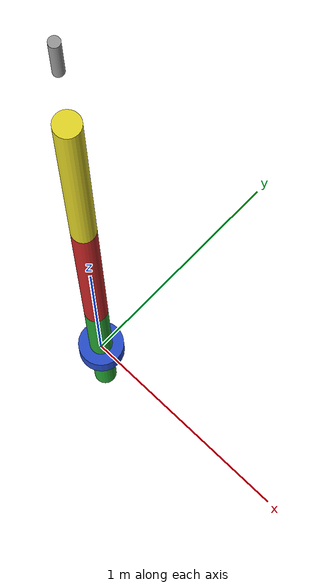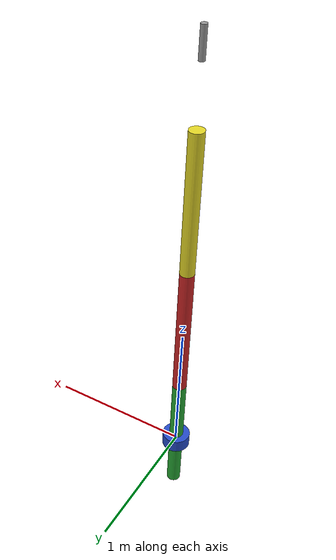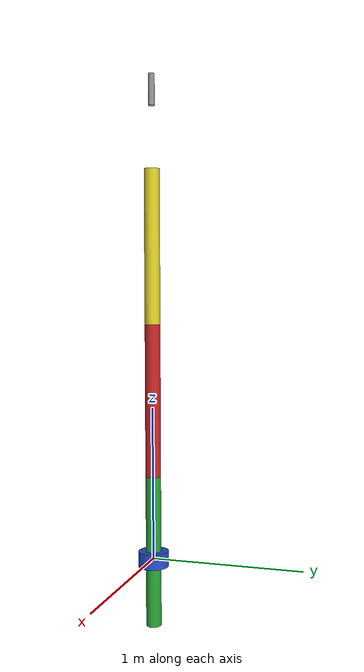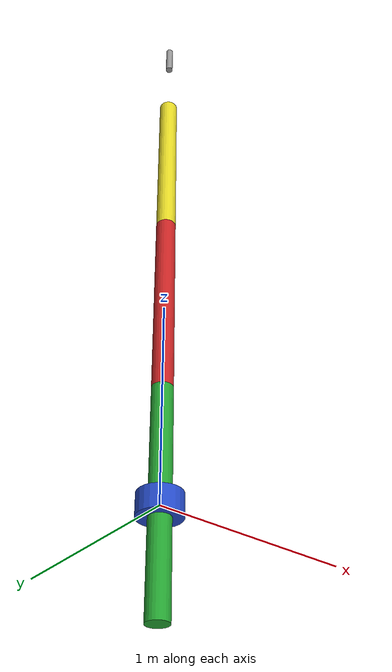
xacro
<?xml version="1.0"?>
<robot name="my_robot_arm" xmlns:xacro="http://www.ros.org/wiki/xacro">

    <!-- Define some constants -->
    <xacro:property name="arm_length" value="1.0" />
    <xacro:property name="arm_radius" value="0.05" />
    <xacro:property name="gripper_length" value="0.2" />
    <xacro:property name="gripper_radius" value="0.02" />

    <!-- Base link -->
    <link name="base_link">
        <visual>
            <geometry>
                <cylinder length="0.1" radius="0.1" />
            </geometry>
            <material name="blue" />
        </visual>
    </link>

    <!-- Joint 1 -->
    <joint name="joint1" type="revolute">
        <parent link="base_link" />
        <child link="link1" />
        <origin xyz="0 0 0.05" rpy="0 0 0" />
        <axis xyz="0 0 1" />
        <limit lower="-1.57" upper="1.57" effort="10" velocity="1" />
    </joint>

    <!-- Link 1 -->
    <link name="link1">
        <visual>
            <geometry>
                <cylinder length="${arm_length}" radius="${arm_radius}" />
            </geometry>
            <material name="green" />
        </visual>
    </link>

    <!-- Joint 2 -->
    <joint name="joint2" type="revolute">
        <parent link="link1" />
        <child link="link2" />
        <origin xyz="0 0 ${arm_length}" rpy="0 0 0" />
        <axis xyz="0 1 0" />
        <limit lower="-1.57" upper="1.57" effort="10" velocity="1" />
    </joint>

    <!-- Link 2 -->
    <link name="link2">
        <visual>
            <geometry>
                <cylinder length="${arm_length}" radius="${arm_radius}" />
            </geometry>
            <material name="red" />
        </visual>
    </link>

    <!-- Joint 3 -->
    <joint name="joint3" type="revolute">
        <parent link="link2" />
        <child link="link3" />
        <origin xyz="0 0 ${arm_length}" rpy="0 0 0" />
        <axis xyz="0 1 0" />
        <limit lower="-1.57" upper="1.57" effort="10" velocity="1" />
    </joint>

    <!-- Link 3 -->
    <link name="link3">
        <visual>
            <geometry>
                <cylinder length="${arm_length}" radius="${arm_radius}" />
            </geometry>
            <material name="yellow" />
        </visual>
    </link>

    <!-- Gripper Joint -->
    <joint name="gripper_joint" type="fixed">
        <parent link="link3" />
        <child link="gripper" />
        <origin xyz="0 0 ${arm_length}" rpy="0 0 0" />
    </joint>

    <!-- Gripper -->
    <link name="gripper">
        <visual>
            <geometry>
                <cylinder length="${gripper_length}" radius="${gripper_radius}" />
            </geometry>
            <material name="gray" />
        </visual>
    </link>

</robot>
